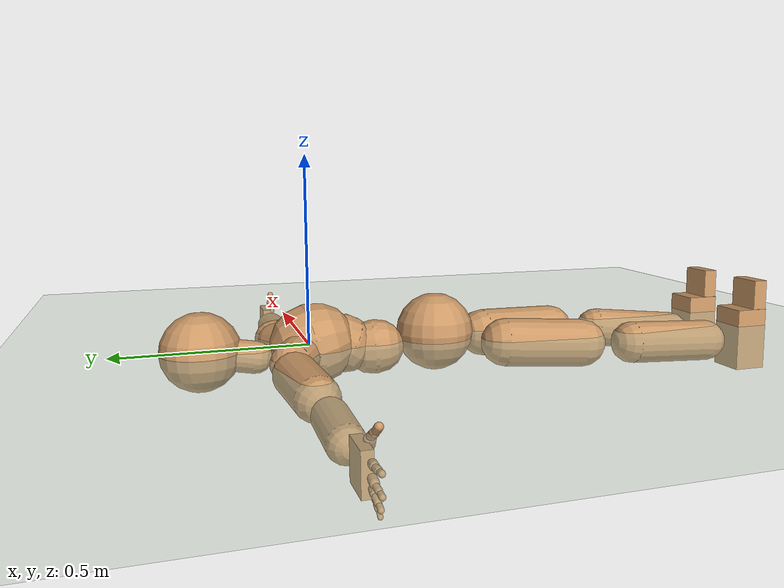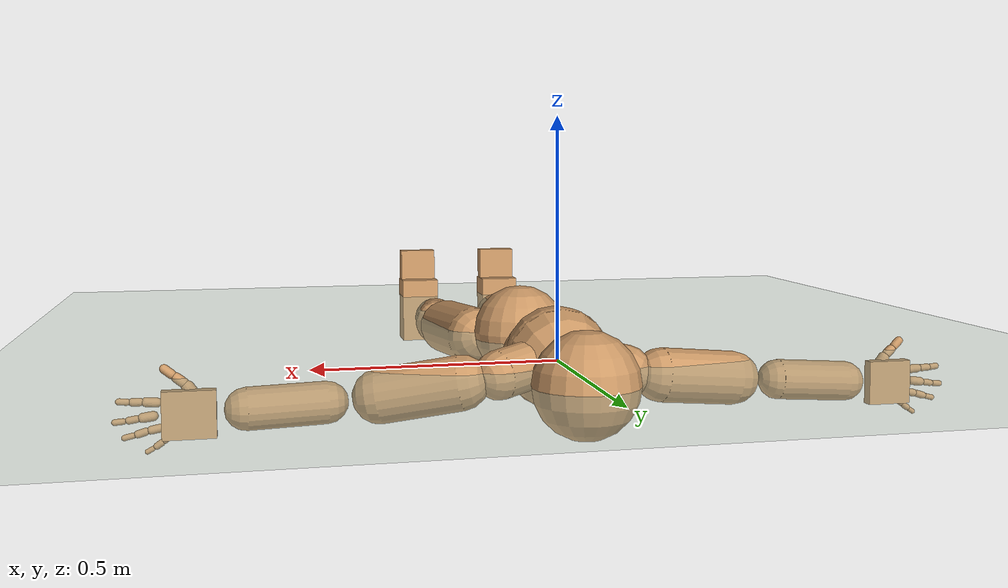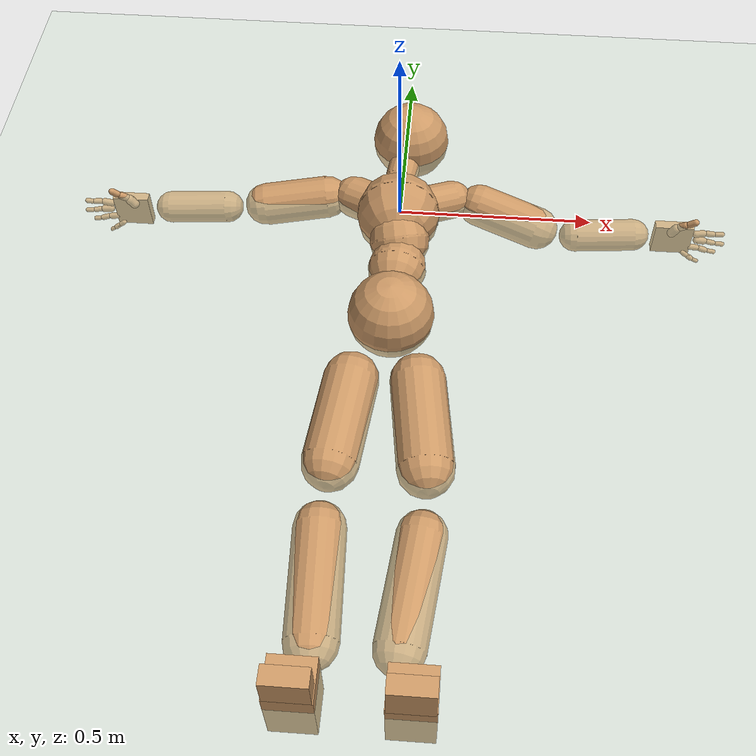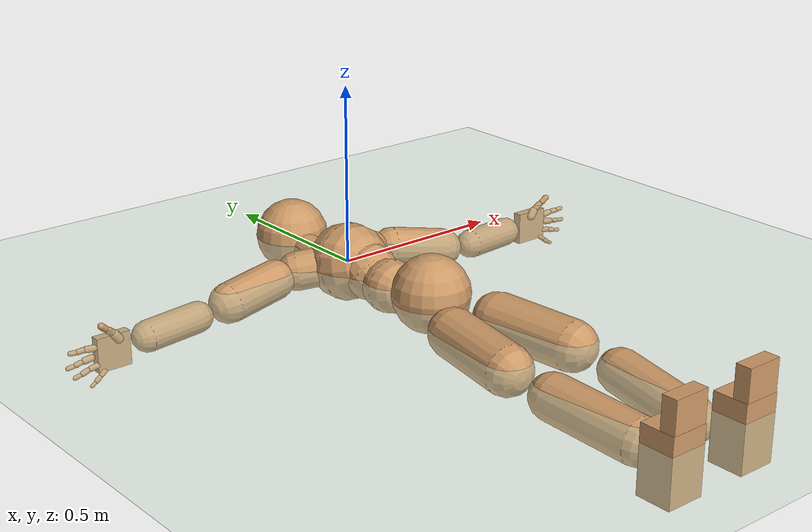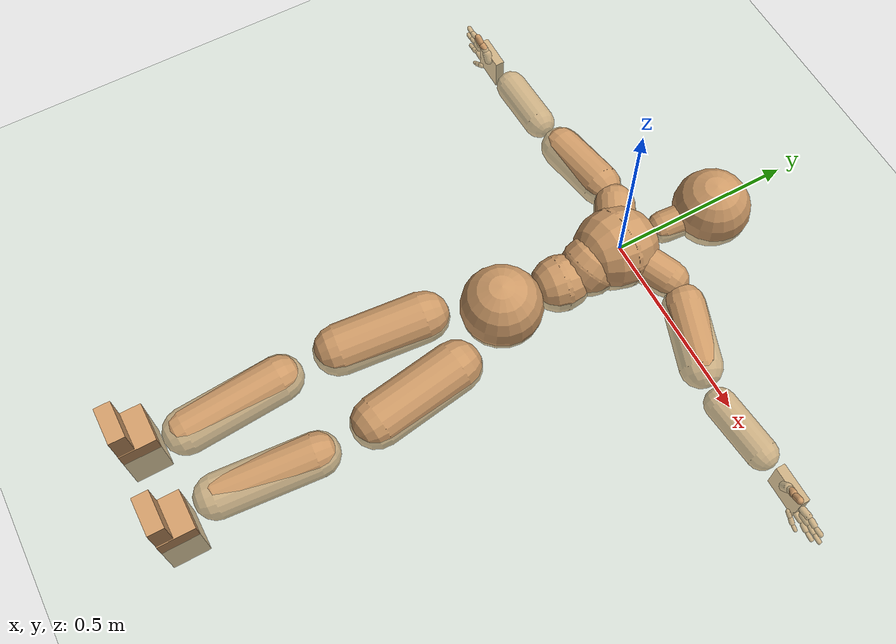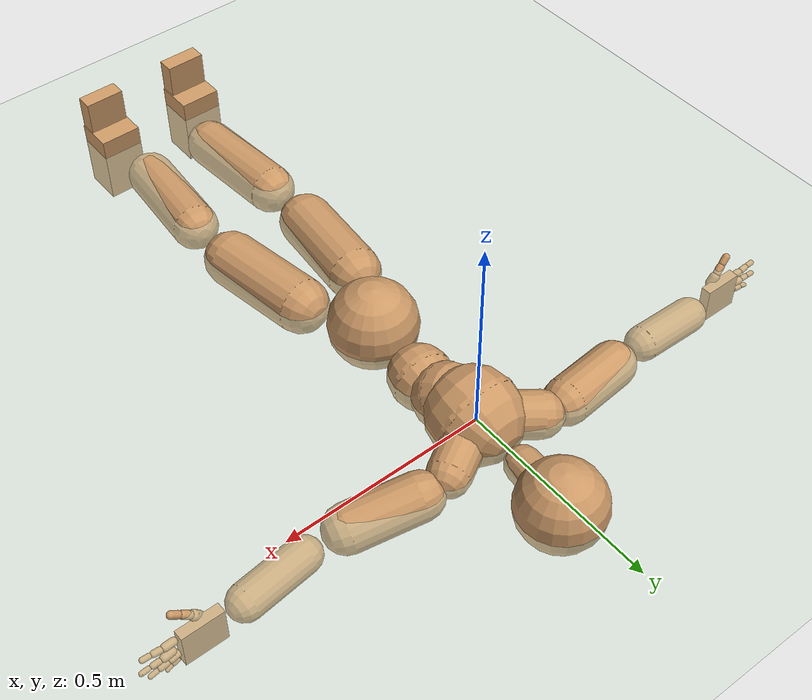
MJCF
<mujoco model="humanoid">
  <compiler coordinate="local"/>
  <default>
    <joint damping="0.0" armature="0.01" stiffness="0.0" limited="true"/>
    <geom conaffinity="1" condim="3" contype="7" margin="0.001" rgba="0.8 0.6 .4 1"/>
  </default>
  <asset>
    <texture type="skybox" builtin="gradient" rgb1=".4 .5 .6" rgb2="0 0 0" width="100" height="100"/>
    <texture builtin="flat" height="1278" mark="cross" markrgb="1 1 1" name="texgeom" random="0.01" rgb1="0.8 0.6 0.4" rgb2="0.8 0.6 0.4" type="cube" width="127"/>
    <texture builtin="checker" height="100" name="texplane" rgb1="0 0 0" rgb2="0.8 0.8 0.8" type="2d" width="100"/>
    <material name="MatPlane" reflectance="0.5" shininess="1" specular="1" texrepeat="60 60" texture="texplane"/>
    <material name="geom" texture="texgeom" texuniform="true"/>
  </asset>
  <worldbody>
    <light cutoff="100" diffuse="1 1 1" dir="-0 0 -1.3" directional="true" exponent="1" pos="0 0 1.3" specular=".1 .1 .1"/>
    <geom conaffinity="1" condim="3" name="floor" pos="0 0 0" rgba="0.8 0.9 0.8 1" size="100 100 .2" type="plane" material="MatPlane"/>
    <body name="Pelvis" pos="0.0037 -0.352 0.0128">
      <freejoint name="Pelvis"/>
      <geom type="sphere" contype="1" conaffinity="1" density="4629.6296296296305" size="0.1067" pos="0.0000 0.0000 0.0000" name="Pelvis"/>
      <body name="L_Hip" pos="0.0665 -0.0953 -0.0285">
        <joint name="L_Hip_x" type="hinge" pos="0 0 0" axis="1 0 0" user="250 2.5 1 500 10 2" armature="0.01" range="-90.0000 90.0000" damping="0" stiffness="0"/>
        <joint name="L_Hip_y" type="hinge" pos="0 0 0" axis="0 1 0" user="250 2.5 1 500 10 2" armature="0.01" range="-90.0000 90.0000" damping="0" stiffness="0"/>
        <joint name="L_Hip_z" type="hinge" pos="0 0 0" axis="0 0 1" user="250 2.5 1 500 10 2" armature="0.01" range="-90.0000 90.0000" damping="0" stiffness="0"/>
        <geom type="capsule" contype="1" conaffinity="1" density="2040.816327" fromto="0.0111 -0.0778 -0.0027 0.0442 -0.3113 -0.0106" size="0.0678" name="L_Hip"/>
        <body name="L_Knee" pos="0.0553 -0.3891 -0.0133">
          <joint name="L_Knee_x" type="hinge" pos="0 0 0" axis="1 0 0" user="250 2.5 1 500 10 2" armature="0.01" range="-180.0000 180.0000" damping="0" stiffness="0"/>
          <joint name="L_Knee_y" type="hinge" pos="0 0 0" axis="0 1 0" user="250 2.5 1 500 10 2" armature="0.01" range="-5.6250 5.6250" damping="0" stiffness="0"/>
          <joint name="L_Knee_z" type="hinge" pos="0 0 0" axis="0 0 1" user="250 2.5 1 500 10 2" armature="0.01" range="-5.6250 5.6250" damping="0" stiffness="0"/>
          <geom type="capsule" contype="1" conaffinity="1" density="1234.567901" fromto="-0.0099 -0.0839 -0.0073 -0.0395 -0.3354 -0.0291" size="0.058" name="L_Knee"/>
          <body name="L_Ankle" pos="-0.0494 -0.4193 -0.0363">
            <joint name="L_Ankle_x" type="hinge" pos="0 0 0" axis="1 0 0" user="150 2.5 1 500 10 2" armature="0.01" range="-90.0000 90.0000" damping="0" stiffness="0"/>
            <joint name="L_Ankle_y" type="hinge" pos="0 0 0" axis="0 1 0" user="150 2.5 1 500 10 2" armature="0.01" range="-90.0000 90.0000" damping="0" stiffness="0"/>
            <joint name="L_Ankle_z" type="hinge" pos="0 0 0" axis="0 0 1" user="150 2.5 1 500 10 2" armature="0.01" range="-90.0000 90.0000" damping="0" stiffness="0"/>
            <geom type="box" density="449.837233" pos="0.0437 -0.0300 0.0226" size="0.0518 0.0475 0.089" quat="1.0000 0.0000 0.0000 0.0000" name="L_Ankle"/>
            <body name="L_Toe" pos="0.0509 -0.0598 0.1206">
              <joint name="L_Toe_x" type="hinge" pos="0 0 0" axis="1 0 0" user="150 1 1 500 1 1" armature="0.01" range="-90.0000 90.0000" damping="0" stiffness="0"/>
              <joint name="L_Toe_y" type="hinge" pos="0 0 0" axis="0 1 0" user="150 1 1 500 1 1" armature="0.01" range="-45.0000 45.0000" damping="0" stiffness="0"/>
              <joint name="L_Toe_z" type="hinge" pos="0 0 0" axis="0 0 1" user="150 1 1 500 1 1" armature="0.01" range="-45.0000 45.0000" damping="0" stiffness="0"/>
              <geom type="box" density="412.922335" pos="-0.0071 0.0031 0.0258" size="0.0494 0.0208 0.0504" quat="1.0000 0.0000 0.0000 0.0000" name="L_Toe"/>
            </body>
          </body>
        </body>
      </body>
      <body name="R_Hip" pos="-0.0718 -0.1052 -0.0242">
        <joint name="R_Hip_x" type="hinge" pos="0 0 0" axis="1 0 0" user="250 2.5 1 500 10 2" armature="0.01" range="-90.0000 90.0000" damping="0" stiffness="0"/>
        <joint name="R_Hip_y" type="hinge" pos="0 0 0" axis="0 1 0" user="250 2.5 1 500 10 2" armature="0.01" range="-90.0000 90.0000" damping="0" stiffness="0"/>
        <joint name="R_Hip_z" type="hinge" pos="0 0 0" axis="0 0 1" user="250 2.5 1 500 10 2" armature="0.01" range="-90.0000 90.0000" damping="0" stiffness="0"/>
        <geom type="capsule" contype="1" conaffinity="1" density="2040.816327" fromto="-0.0088 -0.0748 -0.0042 -0.0353 -0.2993 -0.0169" size="0.067" name="R_Hip"/>
        <body name="R_Knee" pos="-0.0441 -0.3741 -0.0211">
          <joint name="R_Knee_x" type="hinge" pos="0 0 0" axis="1 0 0" user="250 2.5 1 500 10 2" armature="0.01" range="-180.0000 180.0000" damping="0" stiffness="0"/>
          <joint name="R_Knee_y" type="hinge" pos="0 0 0" axis="0 1 0" user="250 2.5 1 500 10 2" armature="0.01" range="-5.6250 5.6250" damping="0" stiffness="0"/>
          <joint name="R_Knee_z" type="hinge" pos="0 0 0" axis="0 0 1" user="250 2.5 1 500 10 2" armature="0.01" range="-5.6250 5.6250" damping="0" stiffness="0"/>
          <geom type="capsule" contype="1" conaffinity="1" density="1234.567901" fromto="0.0037 -0.0854 -0.0047 0.0147 -0.3415 -0.0187" size="0.0601" name="R_Knee"/>
          <body name="R_Ankle" pos="0.0183 -0.4268 -0.0233">
            <joint name="R_Ankle_x" type="hinge" pos="0 0 0" axis="1 0 0" user="150 1 1 500 10 2" armature="0.01" range="-90.0000 90.0000" damping="0" stiffness="0"/>
            <joint name="R_Ankle_y" type="hinge" pos="0 0 0" axis="0 1 0" user="150 1 1 500 10 2" armature="0.01" range="-90.0000 90.0000" damping="0" stiffness="0"/>
            <joint name="R_Ankle_z" type="hinge" pos="0 0 0" axis="0 0 1" user="150 1 1 500 10 2" armature="0.01" range="-90.0000 90.0000" damping="0" stiffness="0"/>
            <geom type="box" density="449.807467" pos="-0.0258 -0.0276 0.0130" size="0.0518 0.0475 0.089" quat="1.0000 0.0000 0.0000 0.0000" name="R_Ankle"/>
            <body name="R_Toe" pos="-0.0409 -0.06 0.1212">
              <joint name="R_Toe_x" type="hinge" pos="0 0 0" axis="1 0 0" user="150 1 1 500 1 1" armature="0.01" range="-90.0000 90.0000" damping="0" stiffness="0"/>
              <joint name="R_Toe_y" type="hinge" pos="0 0 0" axis="0 1 0" user="150 1 1 500 1 1" armature="0.01" range="-45.0000 45.0000" damping="0" stiffness="0"/>
              <joint name="R_Toe_z" type="hinge" pos="0 0 0" axis="0 0 1" user="150 1 1 500 1 1" armature="0.01" range="-45.0000 45.0000" damping="0" stiffness="0"/>
              <geom type="box" density="412.934653" pos="0.0151 0.0058 0.0157" size="0.0494 0.0208 0.0504" quat="1.0000 0.0000 0.0000 0.0000" name="R_Toe"/>
            </body>
          </body>
        </body>
      </body>
      <body name="Torso" pos="-0.0037 0.1115 -0.0292">
        <joint name="Torso_x" type="hinge" pos="0 0 0" axis="1 0 0" user="500 5 1 500 10 2" armature="0.01" range="-60.0000 60.0000" damping="0" stiffness="0"/>
        <joint name="Torso_y" type="hinge" pos="0 0 0" axis="0 1 0" user="500 5 1 500 10 2" armature="0.01" range="-60.0000 60.0000" damping="0" stiffness="0"/>
        <joint name="Torso_z" type="hinge" pos="0 0 0" axis="0 0 1" user="500 5 1 500 10 2" armature="0.01" range="-60.0000 60.0000" damping="0" stiffness="0"/>
        <geom type="capsule" contype="1" conaffinity="1" density="2040.816327" fromto="0.0051 0.0548 -0.0026 0.0062 0.0670 -0.0032" size="0.074" name="Torso"/>
        <body name="Spine" pos="0.0112 0.1218 -0.0059">
          <joint name="Spine_x" type="hinge" pos="0 0 0" axis="1 0 0" user="500 5 1 500 10 2" armature="0.01" range="-60.0000 60.0000" damping="0" stiffness="0"/>
          <joint name="Spine_y" type="hinge" pos="0 0 0" axis="0 1 0" user="500 5 1 500 10 2" armature="0.01" range="-60.0000 60.0000" damping="0" stiffness="0"/>
          <joint name="Spine_z" type="hinge" pos="0 0 0" axis="0 0 1" user="500 5 1 500 10 2" armature="0.01" range="-60.0000 60.0000" damping="0" stiffness="0"/>
          <geom type="capsule" contype="1" conaffinity="1" density="2040.816327" fromto="-0.0056 0.0225 0.0168 -0.0068 0.0275 0.0206" size="0.078" name="Spine"/>
          <body name="Chest" pos="-0.0124 0.0499 0.0374">
            <joint name="Chest_x" type="hinge" pos="0 0 0" axis="1 0 0" user="500 5 1 500 10 2" armature="0.01" range="-60.0000 60.0000" damping="0" stiffness="0"/>
            <joint name="Chest_y" type="hinge" pos="0 0 0" axis="0 1 0" user="500 5 1 500 10 2" armature="0.01" range="-60.0000 60.0000" damping="0" stiffness="0"/>
            <joint name="Chest_z" type="hinge" pos="0 0 0" axis="0 0 1" user="500 5 1 500 10 2" armature="0.01" range="-60.0000 60.0000" damping="0" stiffness="0"/>
            <geom type="capsule" contype="1" conaffinity="1" density="2040.816327" fromto="-0.0021 0.0529 -0.0109 -0.0026 0.0647 -0.0133" size="0.1082" name="Chest"/>
            <body name="Neck" pos="-0.0124 0.1752 -0.0413">
              <joint name="Neck_x" type="hinge" pos="0 0 0" axis="1 0 0" user="150 1 1 250 50 4" armature="0.01" range="-180.0000 180.0000" damping="0" stiffness="0"/>
              <joint name="Neck_y" type="hinge" pos="0 0 0" axis="0 1 0" user="150 1 1 250 50 4" armature="0.01" range="-180.0000 180.0000" damping="0" stiffness="0"/>
              <joint name="Neck_z" type="hinge" pos="0 0 0" axis="0 0 1" user="150 1 1 250 50 4" armature="0.01" range="-180.0000 180.0000" damping="0" stiffness="0"/>
              <geom type="capsule" contype="1" conaffinity="1" density="1000" fromto="0.0049 0.0342 0.0050 0.0198 0.1367 0.0199" size="0.0426" name="Neck"/>
              <body name="Head" pos="0.0247 0.1708 0.0249">
                <joint name="Head_x" type="hinge" pos="0 0 0" axis="1 0 0" user="150 1 1 250 50 4" armature="0.01" range="-90.0000 90.0000" damping="0" stiffness="0"/>
                <joint name="Head_y" type="hinge" pos="0 0 0" axis="0 1 0" user="150 1 1 250 50 4" armature="0.01" range="-90.0000 90.0000" damping="0" stiffness="0"/>
                <joint name="Head_z" type="hinge" pos="0 0 0" axis="0 0 1" user="150 1 1 250 50 4" armature="0.01" range="-90.0000 90.0000" damping="0" stiffness="0"/>
                <geom type="sphere" contype="1" conaffinity="1" density="1000" size="0.1033" pos="0.0000 0.0000 0.0000" name="Head"/>
              </body>
            </body>
            <body name="L_Thorax" pos="0.0454 0.0891 -0.0122">
              <joint name="L_Thorax_x" type="hinge" pos="0 0 0" axis="1 0 0" user="200 2 1 500 50 4" armature="0.01" range="-180.0000 180.0000" damping="0" stiffness="0"/>
              <joint name="L_Thorax_y" type="hinge" pos="0 0 0" axis="0 1 0" user="200 2 1 500 50 4" armature="0.01" range="-180.0000 180.0000" damping="0" stiffness="0"/>
              <joint name="L_Thorax_z" type="hinge" pos="0 0 0" axis="0 0 1" user="200 2 1 500 50 4" armature="0.01" range="-180.0000 180.0000" damping="0" stiffness="0"/>
              <geom type="capsule" contype="1" conaffinity="1" density="1000" fromto="0.0227 0.0121 -0.0038 0.0906 0.0485 -0.0153" size="0.0503" name="L_Thorax"/>
              <body name="L_Shoulder" pos="0.1133 0.0606 -0.0191">
                <joint name="L_Shoulder_x" type="hinge" pos="0 0 0" axis="1 0 0" user="200 2 1 500 50 4" armature="0.01" range="-180.0000 180.0000" damping="0" stiffness="0"/>
                <joint name="L_Shoulder_y" type="hinge" pos="0 0 0" axis="0 1 0" user="200 2 1 500 50 4" armature="0.01" range="-180.0000 180.0000" damping="0" stiffness="0"/>
                <joint name="L_Shoulder_z" type="hinge" pos="0 0 0" axis="0 0 1" user="200 2 1 500 50 4" armature="0.01" range="-180.0000 180.0000" damping="0" stiffness="0"/>
                <geom type="capsule" contype="1" conaffinity="1" density="1000" fromto="0.0517 -0.0155 -0.0092 0.2067 -0.0618 -0.0367" size="0.0558" name="L_Shoulder"/>
                <body name="L_Elbow" pos="0.2584 -0.0773 -0.0459">
                  <joint name="L_Elbow_x" type="hinge" pos="0 0 0" axis="1 0 0" user="150 1 1 150 10 2" armature="0.01" range="-720.0000 720.0000" damping="0" stiffness="0"/>
                  <joint name="L_Elbow_y" type="hinge" pos="0 0 0" axis="0 1 0" user="150 1 1 150 10 2" armature="0.01" range="-720.0000 720.0000" damping="0" stiffness="0"/>
                  <joint name="L_Elbow_z" type="hinge" pos="0 0 0" axis="0 0 1" user="150 1 1 150 10 2" armature="0.01" range="-720.0000 720.0000" damping="0" stiffness="0"/>
                  <geom type="capsule" contype="1" conaffinity="1" density="1000" fromto="0.0514 0.0054 -0.0008 0.2056 0.0216 -0.0031" size="0.0421" name="L_Elbow"/>
                  <body name="L_Wrist" pos="0.257 0.027 -0.0038">
                    <joint name="L_Wrist_x" type="hinge" pos="0 0 0" axis="1 0 0" user="100 1 1 150 1 1" armature="0.01" range="-180.0000 180.0000" damping="0" stiffness="0"/>
                    <joint name="L_Wrist_y" type="hinge" pos="0 0 0" axis="0 1 0" user="100 1 1 150 1 1" armature="0.01" range="-180.0000 180.0000" damping="0" stiffness="0"/>
                    <joint name="L_Wrist_z" type="hinge" pos="0 0 0" axis="0 0 1" user="100 1 1 150 1 1" armature="0.01" range="-180.0000 180.0000" damping="0" stiffness="0"/>
                    <geom type="box" density="1189.39391" pos="0.0544 -0.0011 -0.0038" size="0.0506 0.0126 0.0467" quat="1.0000 0.0000 0.0000 0.0000" name="L_Wrist"/>
                    <body name="L_Index1" pos="0.1063 -0.0091 0.0194">
                      <joint name="L_Index1_x" type="hinge" pos="0 0 0" axis="1 0 0" user="100 10 1 150" armature="0.01" range="-180.0000 180.0000" damping="0" stiffness="0"/>
                      <joint name="L_Index1_y" type="hinge" pos="0 0 0" axis="0 1 0" user="100 10 1 150" armature="0.01" range="-180.0000 180.0000" damping="0" stiffness="0"/>
                      <joint name="L_Index1_z" type="hinge" pos="0 0 0" axis="0 0 1" user="100 10 1 150" armature="0.01" range="-180.0000 180.0000" damping="0" stiffness="0"/>
                      <geom type="capsule" contype="1" conaffinity="1" density="1000" fromto="0.0065 0.0005 0.0006 0.0261 0.0019 0.0025" size="0.0092" name="L_Index1"/>
                      <body name="L_Index2" pos="0.0326 0.0024 0.0031">
                        <joint name="L_Index2_x" type="hinge" pos="0 0 0" axis="1 0 0" user="100 10 1 150" armature="0.01" range="-180.0000 180.0000" damping="0" stiffness="0"/>
                        <joint name="L_Index2_y" type="hinge" pos="0 0 0" axis="0 1 0" user="100 10 1 150" armature="0.01" range="-180.0000 180.0000" damping="0" stiffness="0"/>
                        <joint name="L_Index2_z" type="hinge" pos="0 0 0" axis="0 0 1" user="100 10 1 150" armature="0.01" range="-180.0000 180.0000" damping="0" stiffness="0"/>
                        <geom type="capsule" contype="1" conaffinity="1" density="1000" fromto="0.0046 -0.0005 0.0000 0.0183 -0.0018 0.0001" size="0.0077" name="L_Index2"/>
                        <body name="L_Index3" pos="0.0229 -0.0023 0.0002">
                          <joint name="L_Index3_x" type="hinge" pos="0 0 0" axis="1 0 0" user="100 10 1 150" armature="0.01" range="-180.0000 180.0000" damping="0" stiffness="0"/>
                          <joint name="L_Index3_y" type="hinge" pos="0 0 0" axis="0 1 0" user="100 10 1 150" armature="0.01" range="-180.0000 180.0000" damping="0" stiffness="0"/>
                          <joint name="L_Index3_z" type="hinge" pos="0 0 0" axis="0 0 1" user="100 10 1 150" armature="0.01" range="-180.0000 180.0000" damping="0" stiffness="0"/>
                          <geom type="capsule" contype="1" conaffinity="1" density="1000" fromto="0.0050 -0.0001 0.0004 0.0199 -0.0002 0.0017" size="0.0065" name="L_Index3"/>
                        </body>
                      </body>
                    </body>
                    <body name="L_Middle1" pos="0.114 -0.0065 -0.0044">
                      <joint name="L_Middle1_x" type="hinge" pos="0 0 0" axis="1 0 0" user="100 10 1 150" armature="0.01" range="-180.0000 180.0000" damping="0" stiffness="0"/>
                      <joint name="L_Middle1_y" type="hinge" pos="0 0 0" axis="0 1 0" user="100 10 1 150" armature="0.01" range="-180.0000 180.0000" damping="0" stiffness="0"/>
                      <joint name="L_Middle1_z" type="hinge" pos="0 0 0" axis="0 0 1" user="100 10 1 150" armature="0.01" range="-180.0000 180.0000" damping="0" stiffness="0"/>
                      <geom type="capsule" contype="1" conaffinity="1" density="1000" fromto="0.0062 0.0002 -0.0008 0.0249 0.0008 -0.0033" size="0.0095" name="L_Middle1"/>
                      <body name="L_Middle2" pos="0.0311 0.001 -0.0041">
                        <joint name="L_Middle2_x" type="hinge" pos="0 0 0" axis="1 0 0" user="100 10 1 150" armature="0.01" range="-180.0000 180.0000" damping="0" stiffness="0"/>
                        <joint name="L_Middle2_y" type="hinge" pos="0 0 0" axis="0 1 0" user="100 10 1 150" armature="0.01" range="-180.0000 180.0000" damping="0" stiffness="0"/>
                        <joint name="L_Middle2_z" type="hinge" pos="0 0 0" axis="0 0 1" user="100 10 1 150" armature="0.01" range="-180.0000 180.0000" damping="0" stiffness="0"/>
                        <geom type="capsule" contype="1" conaffinity="1" density="1000" fromto="0.0048 -0.0004 -0.0008 0.0192 -0.0016 -0.0034" size="0.007" name="L_Middle2"/>
                        <body name="L_Middle3" pos="0.024 -0.002 -0.0042">
                          <joint name="L_Middle3_x" type="hinge" pos="0 0 0" axis="1 0 0" user="100 10 1 150" armature="0.01" range="-180.0000 180.0000" damping="0" stiffness="0"/>
                          <joint name="L_Middle3_y" type="hinge" pos="0 0 0" axis="0 1 0" user="100 10 1 150" armature="0.01" range="-180.0000 180.0000" damping="0" stiffness="0"/>
                          <joint name="L_Middle3_z" type="hinge" pos="0 0 0" axis="0 0 1" user="100 10 1 150" armature="0.01" range="-180.0000 180.0000" damping="0" stiffness="0"/>
                          <geom type="capsule" contype="1" conaffinity="1" density="1000" fromto="0.0052 0.0000 -0.0004 0.0208 0.0000 -0.0018" size="0.006" name="L_Middle3"/>
                        </body>
                      </body>
                    </body>
                    <body name="L_Pinky1" pos="0.0878 -0.0152 -0.0449">
                      <joint name="L_Pinky1_x" type="hinge" pos="0 0 0" axis="1 0 0" user="100 10 1 150" armature="0.01" range="-180.0000 180.0000" damping="0" stiffness="0"/>
                      <joint name="L_Pinky1_y" type="hinge" pos="0 0 0" axis="0 1 0" user="100 10 1 150" armature="0.01" range="-180.0000 180.0000" damping="0" stiffness="0"/>
                      <joint name="L_Pinky1_z" type="hinge" pos="0 0 0" axis="0 0 1" user="100 10 1 150" armature="0.01" range="-180.0000 180.0000" damping="0" stiffness="0"/>
                      <geom type="capsule" contype="1" conaffinity="1" density="1000" fromto="0.0031 -0.0002 -0.0024 0.0123 -0.0009 -0.0097" size="0.0067" name="L_Pinky1"/>
                      <body name="L_Pinky2" pos="0.0154 -0.0011 -0.0121">
                        <joint name="L_Pinky2_x" type="hinge" pos="0 0 0" axis="1 0 0" user="100 10 1 150" armature="0.01" range="-180.0000 180.0000" damping="0" stiffness="0"/>
                        <joint name="L_Pinky2_y" type="hinge" pos="0 0 0" axis="0 1 0" user="100 10 1 150" armature="0.01" range="-180.0000 180.0000" damping="0" stiffness="0"/>
                        <joint name="L_Pinky2_z" type="hinge" pos="0 0 0" axis="0 0 1" user="100 10 1 150" armature="0.01" range="-180.0000 180.0000" damping="0" stiffness="0"/>
                        <geom type="capsule" contype="1" conaffinity="1" density="1000" fromto="0.0031 -0.0003 -0.0023 0.0125 -0.0013 -0.0091" size="0.0066" name="L_Pinky2"/>
                        <body name="L_Pinky3" pos="0.0156 -0.0016 -0.0113">
                          <joint name="L_Pinky3_x" type="hinge" pos="0 0 0" axis="1 0 0" user="100 10 1 150" armature="0.01" range="-180.0000 180.0000" damping="0" stiffness="0"/>
                          <joint name="L_Pinky3_y" type="hinge" pos="0 0 0" axis="0 1 0" user="100 10 1 150" armature="0.01" range="-180.0000 180.0000" damping="0" stiffness="0"/>
                          <joint name="L_Pinky3_z" type="hinge" pos="0 0 0" axis="0 0 1" user="100 10 1 150" armature="0.01" range="-180.0000 180.0000" damping="0" stiffness="0"/>
                          <geom type="capsule" contype="1" conaffinity="1" density="1000" fromto="0.0035 0.0001 -0.0019 0.0141 0.0003 -0.0075" size="0.005" name="L_Pinky3"/>
                        </body>
                      </body>
                    </body>
                    <body name="L_Ring1" pos="0.1016 -0.0096 -0.0283">
                      <joint name="L_Ring1_x" type="hinge" pos="0 0 0" axis="1 0 0" user="100 10 1 150" armature="0.01" range="-180.0000 180.0000" damping="0" stiffness="0"/>
                      <joint name="L_Ring1_y" type="hinge" pos="0 0 0" axis="0 1 0" user="100 10 1 150" armature="0.01" range="-180.0000 180.0000" damping="0" stiffness="0"/>
                      <joint name="L_Ring1_z" type="hinge" pos="0 0 0" axis="0 0 1" user="100 10 1 150" armature="0.01" range="-180.0000 180.0000" damping="0" stiffness="0"/>
                      <geom type="capsule" contype="1" conaffinity="1" density="1000" fromto="0.0057 0.0003 -0.0011 0.0228 0.0014 -0.0042" size="0.0081" name="L_Ring1"/>
                      <body name="L_Ring2" pos="0.0285 0.0017 -0.0053">
                        <joint name="L_Ring2_x" type="hinge" pos="0 0 0" axis="1 0 0" user="100 10 1 150" armature="0.01" range="-180.0000 180.0000" damping="0" stiffness="0"/>
                        <joint name="L_Ring2_y" type="hinge" pos="0 0 0" axis="0 1 0" user="100 10 1 150" armature="0.01" range="-180.0000 180.0000" damping="0" stiffness="0"/>
                        <joint name="L_Ring2_z" type="hinge" pos="0 0 0" axis="0 0 1" user="100 10 1 150" armature="0.01" range="-180.0000 180.0000" damping="0" stiffness="0"/>
                        <geom type="capsule" contype="1" conaffinity="1" density="1000" fromto="0.0046 -0.0003 -0.0014 0.0185 -0.0011 -0.0058" size="0.0075" name="L_Ring2"/>
                        <body name="L_Ring3" pos="0.0231 -0.0014 -0.0072">
                          <joint name="L_Ring3_x" type="hinge" pos="0 0 0" axis="1 0 0" user="100 10 1 150" armature="0.01" range="-180.0000 180.0000" damping="0" stiffness="0"/>
                          <joint name="L_Ring3_y" type="hinge" pos="0 0 0" axis="0 1 0" user="100 10 1 150" armature="0.01" range="-180.0000 180.0000" damping="0" stiffness="0"/>
                          <joint name="L_Ring3_z" type="hinge" pos="0 0 0" axis="0 0 1" user="100 10 1 150" armature="0.01" range="-180.0000 180.0000" damping="0" stiffness="0"/>
                          <geom type="capsule" contype="1" conaffinity="1" density="1000" fromto="0.0050 0.0001 -0.0010 0.0201 0.0005 -0.0042" size="0.0058" name="L_Ring3"/>
                        </body>
                      </body>
                    </body>
                    <body name="L_Thumb1" pos="0.0427 -0.0184 0.0261">
                      <joint name="L_Thumb1_x" type="hinge" pos="0 0 0" axis="1 0 0" user="100 10 1 150" armature="0.01" range="-180.0000 180.0000" damping="0" stiffness="0"/>
                      <joint name="L_Thumb1_y" type="hinge" pos="0 0 0" axis="0 1 0" user="100 10 1 150" armature="0.01" range="-180.0000 180.0000" damping="0" stiffness="0"/>
                      <joint name="L_Thumb1_z" type="hinge" pos="0 0 0" axis="0 0 1" user="100 10 1 150" armature="0.01" range="-180.0000 180.0000" damping="0" stiffness="0"/>
                      <geom type="capsule" contype="1" conaffinity="1" density="1000" fromto="0.0035 0.0002 0.0050 0.0140 0.0008 0.0200" size="0.0123" name="L_Thumb1"/>
                      <body name="L_Thumb2" pos="0.0175 0.001 0.0251">
                        <joint name="L_Thumb2_x" type="hinge" pos="0 0 0" axis="1 0 0" user="100 10 1 150" armature="0.01" range="-180.0000 180.0000" damping="0" stiffness="0"/>
                        <joint name="L_Thumb2_y" type="hinge" pos="0 0 0" axis="0 1 0" user="100 10 1 150" armature="0.01" range="-180.0000 180.0000" damping="0" stiffness="0"/>
                        <joint name="L_Thumb2_z" type="hinge" pos="0 0 0" axis="0 0 1" user="100 10 1 150" armature="0.01" range="-180.0000 180.0000" damping="0" stiffness="0"/>
                        <geom type="capsule" contype="1" conaffinity="1" density="1000" fromto="0.0042 -0.0011 0.0031 0.0169 -0.0042 0.0125" size="0.0097" name="L_Thumb2"/>
                        <body name="L_Thumb3" pos="0.0211 -0.0053 0.0156">
                          <joint name="L_Thumb3_x" type="hinge" pos="0 0 0" axis="1 0 0" user="100 10 1 150" armature="0.01" range="-180.0000 180.0000" damping="0" stiffness="0"/>
                          <joint name="L_Thumb3_y" type="hinge" pos="0 0 0" axis="0 1 0" user="100 10 1 150" armature="0.01" range="-180.0000 180.0000" damping="0" stiffness="0"/>
                          <joint name="L_Thumb3_z" type="hinge" pos="0 0 0" axis="0 0 1" user="100 10 1 150" armature="0.01" range="-180.0000 180.0000" damping="0" stiffness="0"/>
                          <geom type="capsule" contype="1" conaffinity="1" density="1000" fromto="0.0046 -0.0007 0.0035 0.0185 -0.0026 0.0141" size="0.0089" name="L_Thumb3"/>
                        </body>
                      </body>
                    </body>
                  </body>
                </body>
              </body>
            </body>
            <body name="R_Thorax" pos="-0.0473 0.0883 -0.0192">
              <joint name="R_Thorax_x" type="hinge" pos="0 0 0" axis="1 0 0" user="200 2 1 150 10 2" armature="0.01" range="-180.0000 180.0000" damping="0" stiffness="0"/>
              <joint name="R_Thorax_y" type="hinge" pos="0 0 0" axis="0 1 0" user="200 2 1 150 10 2" armature="0.01" range="-180.0000 180.0000" damping="0" stiffness="0"/>
              <joint name="R_Thorax_z" type="hinge" pos="0 0 0" axis="0 0 1" user="200 2 1 150 10 2" armature="0.01" range="-180.0000 180.0000" damping="0" stiffness="0"/>
              <geom type="capsule" contype="1" conaffinity="1" density="1000" fromto="-0.0194 0.0113 -0.0033 -0.0776 0.0451 -0.0131" size="0.0553" name="R_Thorax"/>
              <body name="R_Shoulder" pos="-0.097 0.0564 -0.0163">
                <joint name="R_Shoulder_x" type="hinge" pos="0 0 0" axis="1 0 0" user="200 2 1 250 10 2" armature="0.01" range="-180.0000 180.0000" damping="0" stiffness="0"/>
                <joint name="R_Shoulder_y" type="hinge" pos="0 0 0" axis="0 1 0" user="200 2 1 250 10 2" armature="0.01" range="-180.0000 180.0000" damping="0" stiffness="0"/>
                <joint name="R_Shoulder_z" type="hinge" pos="0 0 0" axis="0 0 1" user="200 2 1 250 10 2" armature="0.01" range="-180.0000 180.0000" damping="0" stiffness="0"/>
                <geom type="capsule" contype="1" conaffinity="1" density="1000" fromto="-0.0550 -0.0077 -0.0056 -0.2199 -0.0308 -0.0225" size="0.0558" name="R_Shoulder"/>
                <body name="R_Elbow" pos="-0.2749 -0.0385 -0.0281">
                  <joint name="R_Elbow_x" type="hinge" pos="0 0 0" axis="1 0 0" user="150 1 1 150 10 2" armature="0.01" range="-720.0000 720.0000" damping="0" stiffness="0"/>
                  <joint name="R_Elbow_y" type="hinge" pos="0 0 0" axis="0 1 0" user="150 1 1 150 10 2" armature="0.01" range="-720.0000 720.0000" damping="0" stiffness="0"/>
                  <joint name="R_Elbow_z" type="hinge" pos="0 0 0" axis="0 0 1" user="150 1 1 150 10 2" armature="0.01" range="-720.0000 720.0000" damping="0" stiffness="0"/>
                  <geom type="capsule" contype="1" conaffinity="1" density="1000" fromto="-0.0509 -0.0007 -0.0034 -0.2037 -0.0029 -0.0138" size="0.0424" name="R_Elbow"/>
                  <body name="R_Wrist" pos="-0.2546 -0.0037 -0.0172">
                    <joint name="R_Wrist_x" type="hinge" pos="0 0 0" axis="1 0 0" user="100 1 1 150 1 1" armature="0.01" range="-180.0000 180.0000" damping="0" stiffness="0"/>
                    <joint name="R_Wrist_y" type="hinge" pos="0 0 0" axis="0 1 0" user="100 1 1 150 1 1" armature="0.01" range="-180.0000 180.0000" damping="0" stiffness="0"/>
                    <joint name="R_Wrist_z" type="hinge" pos="0 0 0" axis="0 0 1" user="100 1 1 150 1 1" armature="0.01" range="-180.0000 180.0000" damping="0" stiffness="0"/>
                    <geom type="box" density="1226.470549" pos="-0.0560 -0.0043 -0.0040" size="0.0474 0.0126 0.0467" quat="1.0000 0.0000 0.0000 0.0000" name="R_Wrist"/>
                    <body name="R_Index1" pos="-0.1042 -0.0122 0.0192">
                      <joint name="R_Index1_x" type="hinge" pos="0 0 0" axis="1 0 0" user="100 10 1 150" armature="0.01" range="-180.0000 180.0000" damping="0" stiffness="0"/>
                      <joint name="R_Index1_y" type="hinge" pos="0 0 0" axis="0 1 0" user="100 10 1 150" armature="0.01" range="-180.0000 180.0000" damping="0" stiffness="0"/>
                      <joint name="R_Index1_z" type="hinge" pos="0 0 0" axis="0 0 1" user="100 10 1 150" armature="0.01" range="-180.0000 180.0000" damping="0" stiffness="0"/>
                      <geom type="capsule" contype="1" conaffinity="1" density="1000" fromto="-0.0065 0.0005 0.0006 -0.0261 0.0019 0.0025" size="0.0092" name="R_Index1"/>
                      <body name="R_Index2" pos="-0.0326 0.0024 0.0031">
                        <joint name="R_Index2_x" type="hinge" pos="0 0 0" axis="1 0 0" user="100 10 1 150" armature="0.01" range="-180.0000 180.0000" damping="0" stiffness="0"/>
                        <joint name="R_Index2_y" type="hinge" pos="0 0 0" axis="0 1 0" user="100 10 1 150" armature="0.01" range="-180.0000 180.0000" damping="0" stiffness="0"/>
                        <joint name="R_Index2_z" type="hinge" pos="0 0 0" axis="0 0 1" user="100 10 1 150" armature="0.01" range="-180.0000 180.0000" damping="0" stiffness="0"/>
                        <geom type="capsule" contype="1" conaffinity="1" density="1000" fromto="-0.0046 -0.0005 0.0000 -0.0183 -0.0018 0.0001" size="0.0077" name="R_Index2"/>
                        <body name="R_Index3" pos="-0.0229 -0.0023 0.0002">
                          <joint name="R_Index3_x" type="hinge" pos="0 0 0" axis="1 0 0" user="100 10 1 150" armature="0.01" range="-180.0000 180.0000" damping="0" stiffness="0"/>
                          <joint name="R_Index3_y" type="hinge" pos="0 0 0" axis="0 1 0" user="100 10 1 150" armature="0.01" range="-180.0000 180.0000" damping="0" stiffness="0"/>
                          <joint name="R_Index3_z" type="hinge" pos="0 0 0" axis="0 0 1" user="100 10 1 150" armature="0.01" range="-180.0000 180.0000" damping="0" stiffness="0"/>
                          <geom type="capsule" contype="1" conaffinity="1" density="1000" fromto="-0.0042 -0.0001 0.0004 -0.0167 -0.0002 0.0017" size="0.0067" name="R_Index3"/>
                        </body>
                      </body>
                    </body>
                    <body name="R_Middle1" pos="-0.1119 -0.0096 -0.0045">
                      <joint name="R_Middle1_x" type="hinge" pos="0 0 0" axis="1 0 0" user="100 10 1 150" armature="0.01" range="-180.0000 180.0000" damping="0" stiffness="0"/>
                      <joint name="R_Middle1_y" type="hinge" pos="0 0 0" axis="0 1 0" user="100 10 1 150" armature="0.01" range="-180.0000 180.0000" damping="0" stiffness="0"/>
                      <joint name="R_Middle1_z" type="hinge" pos="0 0 0" axis="0 0 1" user="100 10 1 150" armature="0.01" range="-180.0000 180.0000" damping="0" stiffness="0"/>
                      <geom type="capsule" contype="1" conaffinity="1" density="1000" fromto="-0.0062 0.0002 -0.0008 -0.0249 0.0008 -0.0033" size="0.0095" name="R_Middle1"/>
                      <body name="R_Middle2" pos="-0.0311 0.001 -0.0041">
                        <joint name="R_Middle2_x" type="hinge" pos="0 0 0" axis="1 0 0" user="100 10 1 150" armature="0.01" range="-180.0000 180.0000" damping="0" stiffness="0"/>
                        <joint name="R_Middle2_y" type="hinge" pos="0 0 0" axis="0 1 0" user="100 10 1 150" armature="0.01" range="-180.0000 180.0000" damping="0" stiffness="0"/>
                        <joint name="R_Middle2_z" type="hinge" pos="0 0 0" axis="0 0 1" user="100 10 1 150" armature="0.01" range="-180.0000 180.0000" damping="0" stiffness="0"/>
                        <geom type="capsule" contype="1" conaffinity="1" density="1000" fromto="-0.0048 -0.0004 -0.0008 -0.0192 -0.0016 -0.0034" size="0.007" name="R_Middle2"/>
                        <body name="R_Middle3" pos="-0.024 -0.002 -0.0042">
                          <joint name="R_Middle3_x" type="hinge" pos="0 0 0" axis="1 0 0" user="100 10 1 150" armature="0.01" range="-180.0000 180.0000" damping="0" stiffness="0"/>
                          <joint name="R_Middle3_y" type="hinge" pos="0 0 0" axis="0 1 0" user="100 10 1 150" armature="0.01" range="-180.0000 180.0000" damping="0" stiffness="0"/>
                          <joint name="R_Middle3_z" type="hinge" pos="0 0 0" axis="0 0 1" user="100 10 1 150" armature="0.01" range="-180.0000 180.0000" damping="0" stiffness="0"/>
                          <geom type="capsule" contype="1" conaffinity="1" density="1000" fromto="-0.0044 0.0000 -0.0004 -0.0176 0.0000 -0.0018" size="0.0063" name="R_Middle3"/>
                        </body>
                      </body>
                    </body>
                    <body name="R_Pinky1" pos="-0.0856 -0.0184 -0.0451">
                      <joint name="R_Pinky1_x" type="hinge" pos="0 0 0" axis="1 0 0" user="100 10 1 150" armature="0.01" range="-180.0000 180.0000" damping="0" stiffness="0"/>
                      <joint name="R_Pinky1_y" type="hinge" pos="0 0 0" axis="0 1 0" user="100 10 1 150" armature="0.01" range="-180.0000 180.0000" damping="0" stiffness="0"/>
                      <joint name="R_Pinky1_z" type="hinge" pos="0 0 0" axis="0 0 1" user="100 10 1 150" armature="0.01" range="-180.0000 180.0000" damping="0" stiffness="0"/>
                      <geom type="capsule" contype="1" conaffinity="1" density="1000" fromto="-0.0031 -0.0002 -0.0024 -0.0123 -0.0009 -0.0097" size="0.0067" name="R_Pinky1"/>
                      <body name="R_Pinky2" pos="-0.0154 -0.0011 -0.0121">
                        <joint name="R_Pinky2_x" type="hinge" pos="0 0 0" axis="1 0 0" user="100 10 1 150" armature="0.01" range="-180.0000 180.0000" damping="0" stiffness="0"/>
                        <joint name="R_Pinky2_y" type="hinge" pos="0 0 0" axis="0 1 0" user="100 10 1 150" armature="0.01" range="-180.0000 180.0000" damping="0" stiffness="0"/>
                        <joint name="R_Pinky2_z" type="hinge" pos="0 0 0" axis="0 0 1" user="100 10 1 150" armature="0.01" range="-180.0000 180.0000" damping="0" stiffness="0"/>
                        <geom type="capsule" contype="1" conaffinity="1" density="1000" fromto="-0.0031 -0.0003 -0.0023 -0.0125 -0.0013 -0.0091" size="0.0066" name="R_Pinky2"/>
                        <body name="R_Pinky3" pos="-0.0156 -0.0016 -0.0113">
                          <joint name="R_Pinky3_x" type="hinge" pos="0 0 0" axis="1 0 0" user="100 10 1 150" armature="0.01" range="-180.0000 180.0000" damping="0" stiffness="0"/>
                          <joint name="R_Pinky3_y" type="hinge" pos="0 0 0" axis="0 1 0" user="100 10 1 150" armature="0.01" range="-180.0000 180.0000" damping="0" stiffness="0"/>
                          <joint name="R_Pinky3_z" type="hinge" pos="0 0 0" axis="0 0 1" user="100 10 1 150" armature="0.01" range="-180.0000 180.0000" damping="0" stiffness="0"/>
                          <geom type="capsule" contype="1" conaffinity="1" density="1000" fromto="-0.0027 0.0001 -0.0019 -0.0109 0.0003 -0.0075" size="0.0052" name="R_Pinky3"/>
                        </body>
                      </body>
                    </body>
                    <body name="R_Ring1" pos="-0.0995 -0.0128 -0.0284">
                      <joint name="R_Ring1_x" type="hinge" pos="0 0 0" axis="1 0 0" user="100 10 1 150" armature="0.01" range="-180.0000 180.0000" damping="0" stiffness="0"/>
                      <joint name="R_Ring1_y" type="hinge" pos="0 0 0" axis="0 1 0" user="100 10 1 150" armature="0.01" range="-180.0000 180.0000" damping="0" stiffness="0"/>
                      <joint name="R_Ring1_z" type="hinge" pos="0 0 0" axis="0 0 1" user="100 10 1 150" armature="0.01" range="-180.0000 180.0000" damping="0" stiffness="0"/>
                      <geom type="capsule" contype="1" conaffinity="1" density="1000" fromto="-0.0057 0.0003 -0.0011 -0.0228 0.0014 -0.0042" size="0.0081" name="R_Ring1"/>
                      <body name="R_Ring2" pos="-0.0285 0.0017 -0.0053">
                        <joint name="R_Ring2_x" type="hinge" pos="0 0 0" axis="1 0 0" user="100 10 1 150" armature="0.01" range="-180.0000 180.0000" damping="0" stiffness="0"/>
                        <joint name="R_Ring2_y" type="hinge" pos="0 0 0" axis="0 1 0" user="100 10 1 150" armature="0.01" range="-180.0000 180.0000" damping="0" stiffness="0"/>
                        <joint name="R_Ring2_z" type="hinge" pos="0 0 0" axis="0 0 1" user="100 10 1 150" armature="0.01" range="-180.0000 180.0000" damping="0" stiffness="0"/>
                        <geom type="capsule" contype="1" conaffinity="1" density="1000" fromto="-0.0046 -0.0003 -0.0014 -0.0185 -0.0011 -0.0058" size="0.0075" name="R_Ring2"/>
                        <body name="R_Ring3" pos="-0.0231 -0.0014 -0.0072">
                          <joint name="R_Ring3_x" type="hinge" pos="0 0 0" axis="1 0 0" user="100 10 1 150" armature="0.01" range="-180.0000 180.0000" damping="0" stiffness="0"/>
                          <joint name="R_Ring3_y" type="hinge" pos="0 0 0" axis="0 1 0" user="100 10 1 150" armature="0.01" range="-180.0000 180.0000" damping="0" stiffness="0"/>
                          <joint name="R_Ring3_z" type="hinge" pos="0 0 0" axis="0 0 1" user="100 10 1 150" armature="0.01" range="-180.0000 180.0000" damping="0" stiffness="0"/>
                          <geom type="capsule" contype="1" conaffinity="1" density="1000" fromto="-0.0042 0.0001 -0.0010 -0.0169 0.0005 -0.0042" size="0.006" name="R_Ring3"/>
                        </body>
                      </body>
                    </body>
                    <body name="R_Thumb1" pos="-0.0406 -0.0216 0.0259">
                      <joint name="R_Thumb1_x" type="hinge" pos="0 0 0" axis="1 0 0" user="100 10 1 150" armature="0.01" range="-180.0000 180.0000" damping="0" stiffness="0"/>
                      <joint name="R_Thumb1_y" type="hinge" pos="0 0 0" axis="0 1 0" user="100 10 1 150" armature="0.01" range="-180.0000 180.0000" damping="0" stiffness="0"/>
                      <joint name="R_Thumb1_z" type="hinge" pos="0 0 0" axis="0 0 1" user="100 10 1 150" armature="0.01" range="-180.0000 180.0000" damping="0" stiffness="0"/>
                      <geom type="capsule" contype="1" conaffinity="1" density="1000" fromto="-0.0035 0.0002 0.0050 -0.0140 0.0008 0.0200" size="0.0123" name="R_Thumb1"/>
                      <body name="R_Thumb2" pos="-0.0175 0.001 0.0251">
                        <joint name="R_Thumb2_x" type="hinge" pos="0 0 0" axis="1 0 0" user="100 10 1 150" armature="0.01" range="-180.0000 180.0000" damping="0" stiffness="0"/>
                        <joint name="R_Thumb2_y" type="hinge" pos="0 0 0" axis="0 1 0" user="100 10 1 150" armature="0.01" range="-180.0000 180.0000" damping="0" stiffness="0"/>
                        <joint name="R_Thumb2_z" type="hinge" pos="0 0 0" axis="0 0 1" user="100 10 1 150" armature="0.01" range="-180.0000 180.0000" damping="0" stiffness="0"/>
                        <geom type="capsule" contype="1" conaffinity="1" density="1000" fromto="-0.0042 -0.0011 0.0031 -0.0169 -0.0042 0.0125" size="0.0097" name="R_Thumb2"/>
                        <body name="R_Thumb3" pos="-0.0211 -0.0053 0.0156">
                          <joint name="R_Thumb3_x" type="hinge" pos="0 0 0" axis="1 0 0" user="100 10 1 150" armature="0.01" range="-180.0000 180.0000" damping="0" stiffness="0"/>
                          <joint name="R_Thumb3_y" type="hinge" pos="0 0 0" axis="0 1 0" user="100 10 1 150" armature="0.01" range="-180.0000 180.0000" damping="0" stiffness="0"/>
                          <joint name="R_Thumb3_z" type="hinge" pos="0 0 0" axis="0 0 1" user="100 10 1 150" armature="0.01" range="-180.0000 180.0000" damping="0" stiffness="0"/>
                          <geom type="capsule" contype="1" conaffinity="1" density="1000" fromto="-0.0038 -0.0007 0.0035 -0.0153 -0.0026 0.0141" size="0.0091" name="R_Thumb3"/>
                        </body>
                      </body>
                    </body>
                  </body>
                </body>
              </body>
            </body>
          </body>
        </body>
      </body>
    </body>
  </worldbody>
  <actuator>
    <motor name="L_Hip_x" joint="L_Hip_x" gear="1"/>
    <motor name="L_Hip_y" joint="L_Hip_y" gear="1"/>
    <motor name="L_Hip_z" joint="L_Hip_z" gear="1"/>
    <motor name="L_Knee_x" joint="L_Knee_x" gear="1"/>
    <motor name="L_Knee_y" joint="L_Knee_y" gear="1"/>
    <motor name="L_Knee_z" joint="L_Knee_z" gear="1"/>
    <motor name="L_Ankle_x" joint="L_Ankle_x" gear="1"/>
    <motor name="L_Ankle_y" joint="L_Ankle_y" gear="1"/>
    <motor name="L_Ankle_z" joint="L_Ankle_z" gear="1"/>
    <motor name="L_Toe_x" joint="L_Toe_x" gear="1"/>
    <motor name="L_Toe_y" joint="L_Toe_y" gear="1"/>
    <motor name="L_Toe_z" joint="L_Toe_z" gear="1"/>
    <motor name="R_Hip_x" joint="R_Hip_x" gear="1"/>
    <motor name="R_Hip_y" joint="R_Hip_y" gear="1"/>
    <motor name="R_Hip_z" joint="R_Hip_z" gear="1"/>
    <motor name="R_Knee_x" joint="R_Knee_x" gear="1"/>
    <motor name="R_Knee_y" joint="R_Knee_y" gear="1"/>
    <motor name="R_Knee_z" joint="R_Knee_z" gear="1"/>
    <motor name="R_Ankle_x" joint="R_Ankle_x" gear="1"/>
    <motor name="R_Ankle_y" joint="R_Ankle_y" gear="1"/>
    <motor name="R_Ankle_z" joint="R_Ankle_z" gear="1"/>
    <motor name="R_Toe_x" joint="R_Toe_x" gear="1"/>
    <motor name="R_Toe_y" joint="R_Toe_y" gear="1"/>
    <motor name="R_Toe_z" joint="R_Toe_z" gear="1"/>
    <motor name="Torso_x" joint="Torso_x" gear="1"/>
    <motor name="Torso_y" joint="Torso_y" gear="1"/>
    <motor name="Torso_z" joint="Torso_z" gear="1"/>
    <motor name="Spine_x" joint="Spine_x" gear="1"/>
    <motor name="Spine_y" joint="Spine_y" gear="1"/>
    <motor name="Spine_z" joint="Spine_z" gear="1"/>
    <motor name="Chest_x" joint="Chest_x" gear="1"/>
    <motor name="Chest_y" joint="Chest_y" gear="1"/>
    <motor name="Chest_z" joint="Chest_z" gear="1"/>
    <motor name="Neck_x" joint="Neck_x" gear="1"/>
    <motor name="Neck_y" joint="Neck_y" gear="1"/>
    <motor name="Neck_z" joint="Neck_z" gear="1"/>
    <motor name="Head_x" joint="Head_x" gear="1"/>
    <motor name="Head_y" joint="Head_y" gear="1"/>
    <motor name="Head_z" joint="Head_z" gear="1"/>
    <motor name="L_Thorax_x" joint="L_Thorax_x" gear="1"/>
    <motor name="L_Thorax_y" joint="L_Thorax_y" gear="1"/>
    <motor name="L_Thorax_z" joint="L_Thorax_z" gear="1"/>
    <motor name="L_Shoulder_x" joint="L_Shoulder_x" gear="1"/>
    <motor name="L_Shoulder_y" joint="L_Shoulder_y" gear="1"/>
    <motor name="L_Shoulder_z" joint="L_Shoulder_z" gear="1"/>
    <motor name="L_Elbow_x" joint="L_Elbow_x" gear="1"/>
    <motor name="L_Elbow_y" joint="L_Elbow_y" gear="1"/>
    <motor name="L_Elbow_z" joint="L_Elbow_z" gear="1"/>
    <motor name="L_Wrist_x" joint="L_Wrist_x" gear="1"/>
    <motor name="L_Wrist_y" joint="L_Wrist_y" gear="1"/>
    <motor name="L_Wrist_z" joint="L_Wrist_z" gear="1"/>
    <motor name="L_Index1_x" joint="L_Index1_x" gear="1"/>
    <motor name="L_Index1_y" joint="L_Index1_y" gear="1"/>
    <motor name="L_Index1_z" joint="L_Index1_z" gear="1"/>
    <motor name="L_Index2_x" joint="L_Index2_x" gear="1"/>
    <motor name="L_Index2_y" joint="L_Index2_y" gear="1"/>
    <motor name="L_Index2_z" joint="L_Index2_z" gear="1"/>
    <motor name="L_Index3_x" joint="L_Index3_x" gear="1"/>
    <motor name="L_Index3_y" joint="L_Index3_y" gear="1"/>
    <motor name="L_Index3_z" joint="L_Index3_z" gear="1"/>
    <motor name="L_Middle1_x" joint="L_Middle1_x" gear="1"/>
    <motor name="L_Middle1_y" joint="L_Middle1_y" gear="1"/>
    <motor name="L_Middle1_z" joint="L_Middle1_z" gear="1"/>
    <motor name="L_Middle2_x" joint="L_Middle2_x" gear="1"/>
    <motor name="L_Middle2_y" joint="L_Middle2_y" gear="1"/>
    <motor name="L_Middle2_z" joint="L_Middle2_z" gear="1"/>
    <motor name="L_Middle3_x" joint="L_Middle3_x" gear="1"/>
    <motor name="L_Middle3_y" joint="L_Middle3_y" gear="1"/>
    <motor name="L_Middle3_z" joint="L_Middle3_z" gear="1"/>
    <motor name="L_Pinky1_x" joint="L_Pinky1_x" gear="1"/>
    <motor name="L_Pinky1_y" joint="L_Pinky1_y" gear="1"/>
    <motor name="L_Pinky1_z" joint="L_Pinky1_z" gear="1"/>
    <motor name="L_Pinky2_x" joint="L_Pinky2_x" gear="1"/>
    <motor name="L_Pinky2_y" joint="L_Pinky2_y" gear="1"/>
    <motor name="L_Pinky2_z" joint="L_Pinky2_z" gear="1"/>
    <motor name="L_Pinky3_x" joint="L_Pinky3_x" gear="1"/>
    <motor name="L_Pinky3_y" joint="L_Pinky3_y" gear="1"/>
    <motor name="L_Pinky3_z" joint="L_Pinky3_z" gear="1"/>
    <motor name="L_Ring1_x" joint="L_Ring1_x" gear="1"/>
    <motor name="L_Ring1_y" joint="L_Ring1_y" gear="1"/>
    <motor name="L_Ring1_z" joint="L_Ring1_z" gear="1"/>
    <motor name="L_Ring2_x" joint="L_Ring2_x" gear="1"/>
    <motor name="L_Ring2_y" joint="L_Ring2_y" gear="1"/>
    <motor name="L_Ring2_z" joint="L_Ring2_z" gear="1"/>
    <motor name="L_Ring3_x" joint="L_Ring3_x" gear="1"/>
    <motor name="L_Ring3_y" joint="L_Ring3_y" gear="1"/>
    <motor name="L_Ring3_z" joint="L_Ring3_z" gear="1"/>
    <motor name="L_Thumb1_x" joint="L_Thumb1_x" gear="1"/>
    <motor name="L_Thumb1_y" joint="L_Thumb1_y" gear="1"/>
    <motor name="L_Thumb1_z" joint="L_Thumb1_z" gear="1"/>
    <motor name="L_Thumb2_x" joint="L_Thumb2_x" gear="1"/>
    <motor name="L_Thumb2_y" joint="L_Thumb2_y" gear="1"/>
    <motor name="L_Thumb2_z" joint="L_Thumb2_z" gear="1"/>
    <motor name="L_Thumb3_x" joint="L_Thumb3_x" gear="1"/>
    <motor name="L_Thumb3_y" joint="L_Thumb3_y" gear="1"/>
    <motor name="L_Thumb3_z" joint="L_Thumb3_z" gear="1"/>
    <motor name="R_Thorax_x" joint="R_Thorax_x" gear="1"/>
    <motor name="R_Thorax_y" joint="R_Thorax_y" gear="1"/>
    <motor name="R_Thorax_z" joint="R_Thorax_z" gear="1"/>
    <motor name="R_Shoulder_x" joint="R_Shoulder_x" gear="1"/>
    <motor name="R_Shoulder_y" joint="R_Shoulder_y" gear="1"/>
    <motor name="R_Shoulder_z" joint="R_Shoulder_z" gear="1"/>
    <motor name="R_Elbow_x" joint="R_Elbow_x" gear="1"/>
    <motor name="R_Elbow_y" joint="R_Elbow_y" gear="1"/>
    <motor name="R_Elbow_z" joint="R_Elbow_z" gear="1"/>
    <motor name="R_Wrist_x" joint="R_Wrist_x" gear="1"/>
    <motor name="R_Wrist_y" joint="R_Wrist_y" gear="1"/>
    <motor name="R_Wrist_z" joint="R_Wrist_z" gear="1"/>
    <motor name="R_Index1_x" joint="R_Index1_x" gear="1"/>
    <motor name="R_Index1_y" joint="R_Index1_y" gear="1"/>
    <motor name="R_Index1_z" joint="R_Index1_z" gear="1"/>
    <motor name="R_Index2_x" joint="R_Index2_x" gear="1"/>
    <motor name="R_Index2_y" joint="R_Index2_y" gear="1"/>
    <motor name="R_Index2_z" joint="R_Index2_z" gear="1"/>
    <motor name="R_Index3_x" joint="R_Index3_x" gear="1"/>
    <motor name="R_Index3_y" joint="R_Index3_y" gear="1"/>
    <motor name="R_Index3_z" joint="R_Index3_z" gear="1"/>
    <motor name="R_Middle1_x" joint="R_Middle1_x" gear="1"/>
    <motor name="R_Middle1_y" joint="R_Middle1_y" gear="1"/>
    <motor name="R_Middle1_z" joint="R_Middle1_z" gear="1"/>
    <motor name="R_Middle2_x" joint="R_Middle2_x" gear="1"/>
    <motor name="R_Middle2_y" joint="R_Middle2_y" gear="1"/>
    <motor name="R_Middle2_z" joint="R_Middle2_z" gear="1"/>
    <motor name="R_Middle3_x" joint="R_Middle3_x" gear="1"/>
    <motor name="R_Middle3_y" joint="R_Middle3_y" gear="1"/>
    <motor name="R_Middle3_z" joint="R_Middle3_z" gear="1"/>
    <motor name="R_Pinky1_x" joint="R_Pinky1_x" gear="1"/>
    <motor name="R_Pinky1_y" joint="R_Pinky1_y" gear="1"/>
    <motor name="R_Pinky1_z" joint="R_Pinky1_z" gear="1"/>
    <motor name="R_Pinky2_x" joint="R_Pinky2_x" gear="1"/>
    <motor name="R_Pinky2_y" joint="R_Pinky2_y" gear="1"/>
    <motor name="R_Pinky2_z" joint="R_Pinky2_z" gear="1"/>
    <motor name="R_Pinky3_x" joint="R_Pinky3_x" gear="1"/>
    <motor name="R_Pinky3_y" joint="R_Pinky3_y" gear="1"/>
    <motor name="R_Pinky3_z" joint="R_Pinky3_z" gear="1"/>
    <motor name="R_Ring1_x" joint="R_Ring1_x" gear="1"/>
    <motor name="R_Ring1_y" joint="R_Ring1_y" gear="1"/>
    <motor name="R_Ring1_z" joint="R_Ring1_z" gear="1"/>
    <motor name="R_Ring2_x" joint="R_Ring2_x" gear="1"/>
    <motor name="R_Ring2_y" joint="R_Ring2_y" gear="1"/>
    <motor name="R_Ring2_z" joint="R_Ring2_z" gear="1"/>
    <motor name="R_Ring3_x" joint="R_Ring3_x" gear="1"/>
    <motor name="R_Ring3_y" joint="R_Ring3_y" gear="1"/>
    <motor name="R_Ring3_z" joint="R_Ring3_z" gear="1"/>
    <motor name="R_Thumb1_x" joint="R_Thumb1_x" gear="1"/>
    <motor name="R_Thumb1_y" joint="R_Thumb1_y" gear="1"/>
    <motor name="R_Thumb1_z" joint="R_Thumb1_z" gear="1"/>
    <motor name="R_Thumb2_x" joint="R_Thumb2_x" gear="1"/>
    <motor name="R_Thumb2_y" joint="R_Thumb2_y" gear="1"/>
    <motor name="R_Thumb2_z" joint="R_Thumb2_z" gear="1"/>
    <motor name="R_Thumb3_x" joint="R_Thumb3_x" gear="1"/>
    <motor name="R_Thumb3_y" joint="R_Thumb3_y" gear="1"/>
    <motor name="R_Thumb3_z" joint="R_Thumb3_z" gear="1"/>
  </actuator>
  <contact>
    <exclude body1="Torso" body2="Chest"/>
    <exclude body1="Head" body2="Chest"/>
    <exclude body1="R_Knee" body2="R_Toe"/>
    <exclude body1="R_Knee" body2="L_Ankle"/>
    <exclude body1="R_Knee" body2="L_Toe"/>
    <exclude body1="L_Knee" body2="L_Toe"/>
    <exclude body1="L_Knee" body2="R_Ankle"/>
    <exclude body1="L_Knee" body2="R_Toe"/>
    <exclude body1="L_Shoulder" body2="Chest"/>
    <exclude body1="R_Shoulder" body2="Chest"/>
  </contact>
  <sensor/>
  <size njmax="700" nconmax="700"/>
</mujoco>
